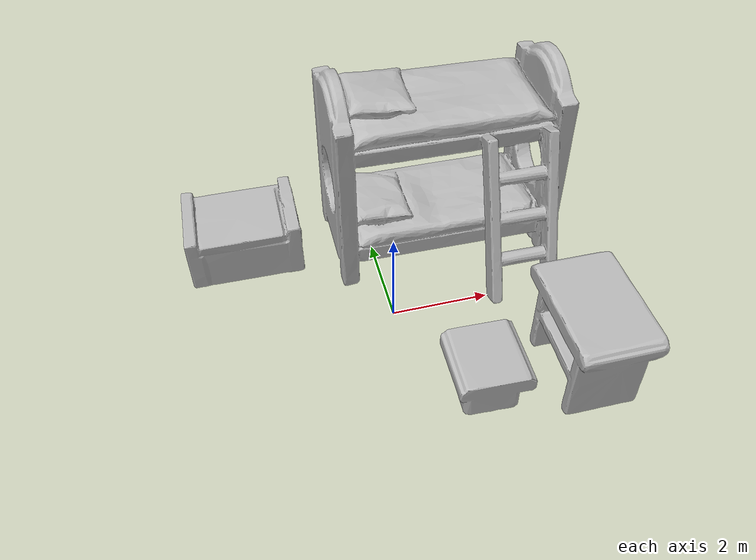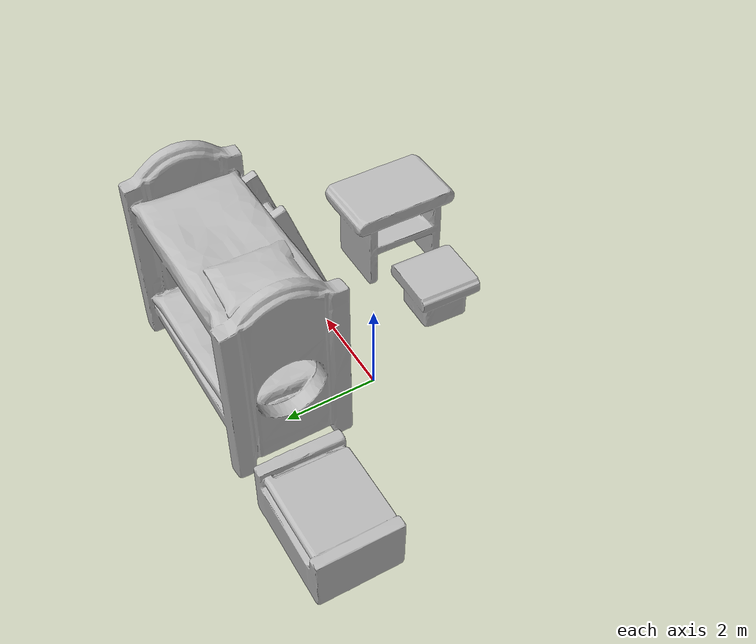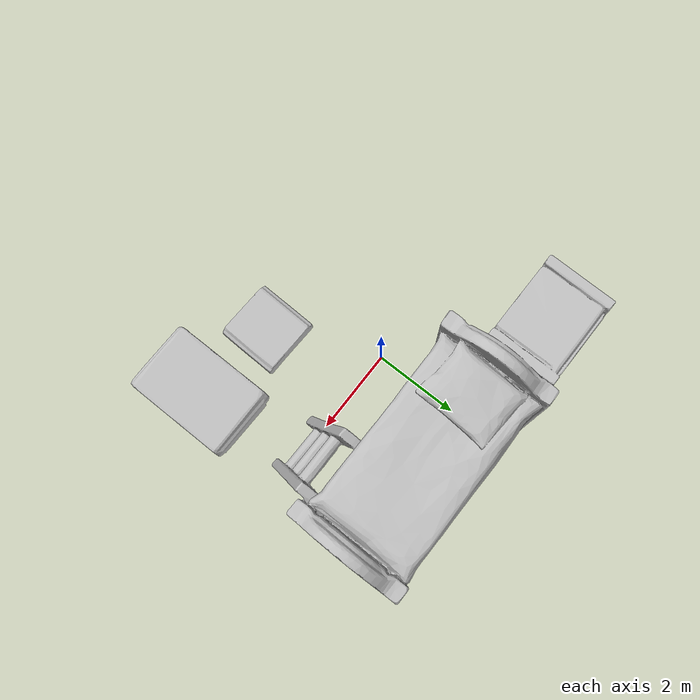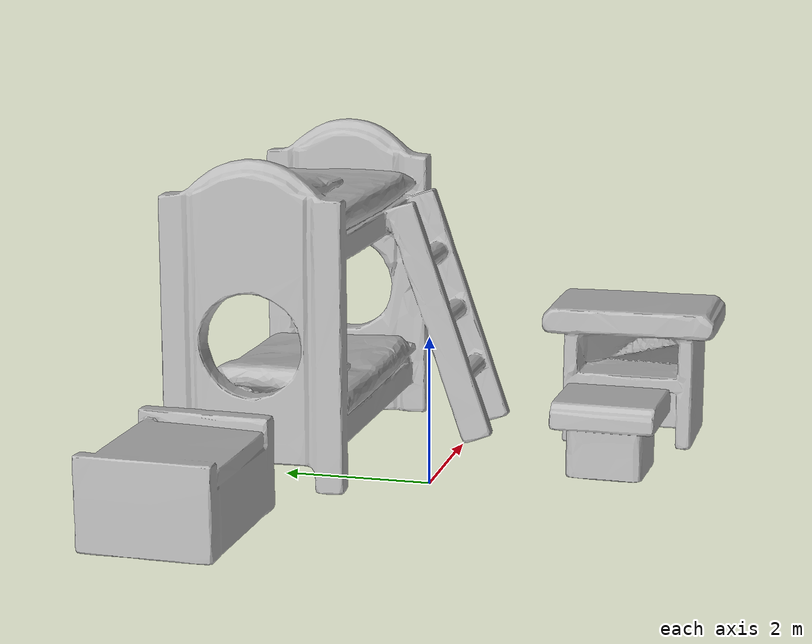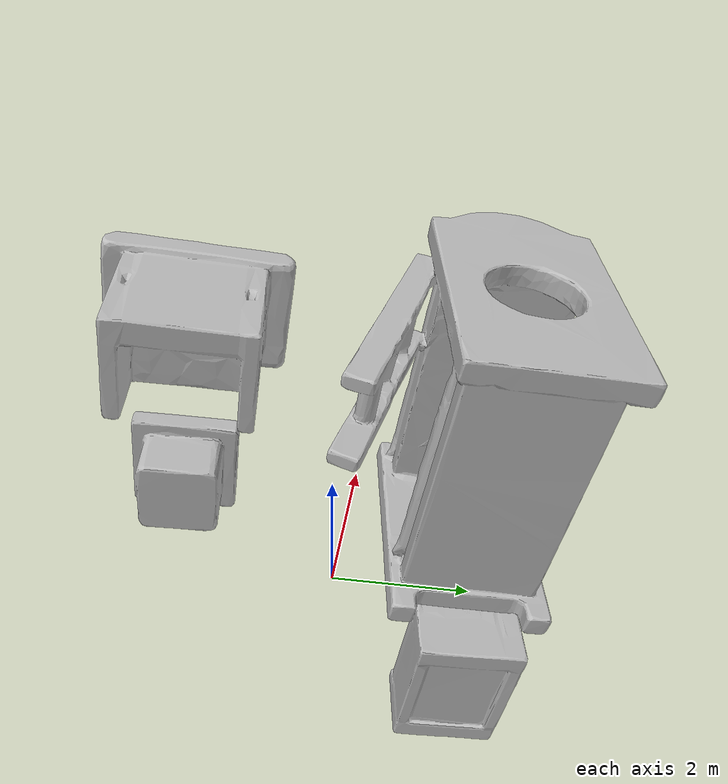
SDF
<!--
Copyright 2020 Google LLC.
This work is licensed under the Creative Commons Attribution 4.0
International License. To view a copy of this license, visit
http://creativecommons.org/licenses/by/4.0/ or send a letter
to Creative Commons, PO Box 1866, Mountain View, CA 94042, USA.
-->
<?xml version="1.0" ?>
<sdf version="1.6">
  <model name="BEDROOM_CLASSIC">
    <link name="link_0">
      <visual name="visual">
        <geometry>
          <mesh>
            <uri>meshes/model.obj</uri>
            <scale>35 35 35</scale>
          </mesh>
        </geometry>
      </visual>
      <collision name="collision_0">
        <geometry>
          <mesh>
            <uri>meshes/model.obj</uri>
            <scale>35 35 35</scale>
          </mesh>
        </geometry>
      </collision>
    </link>
  </model>
</sdf>
